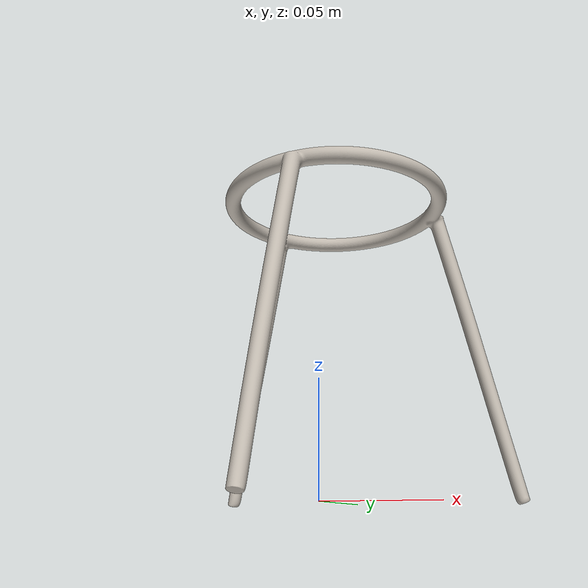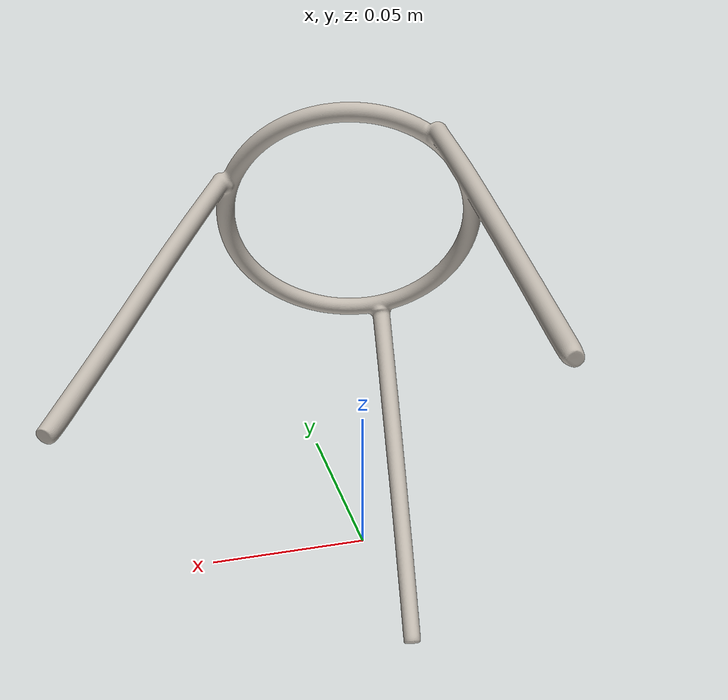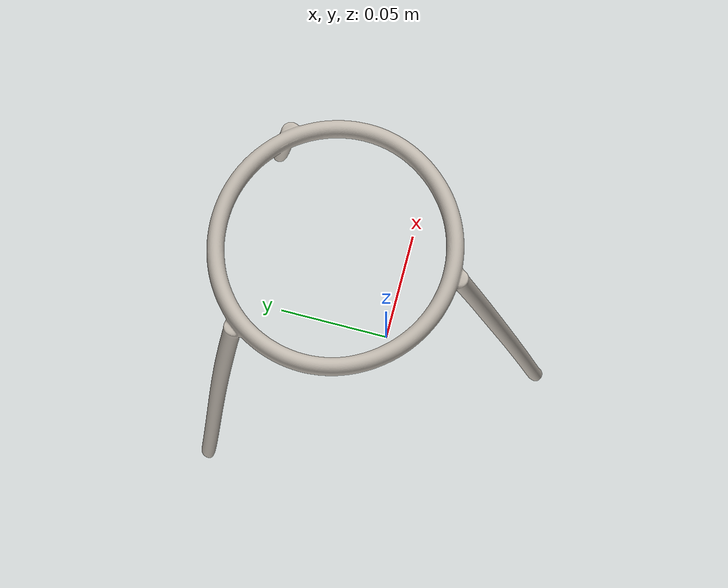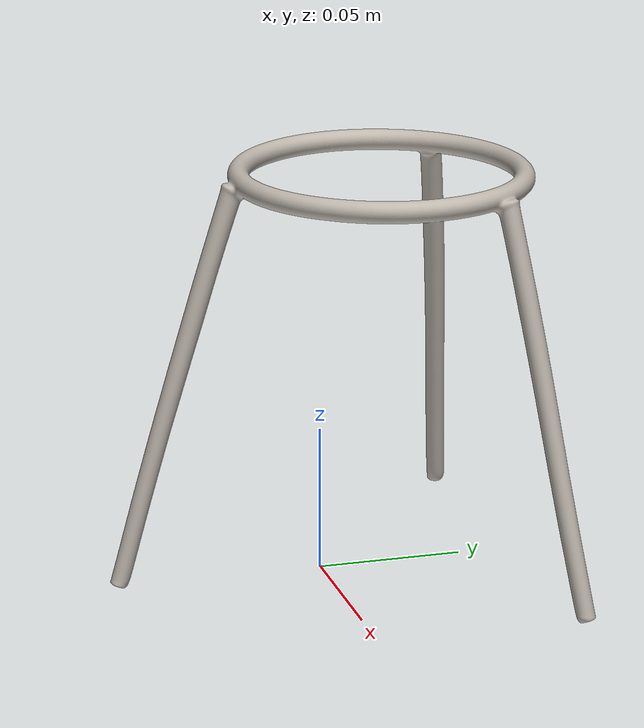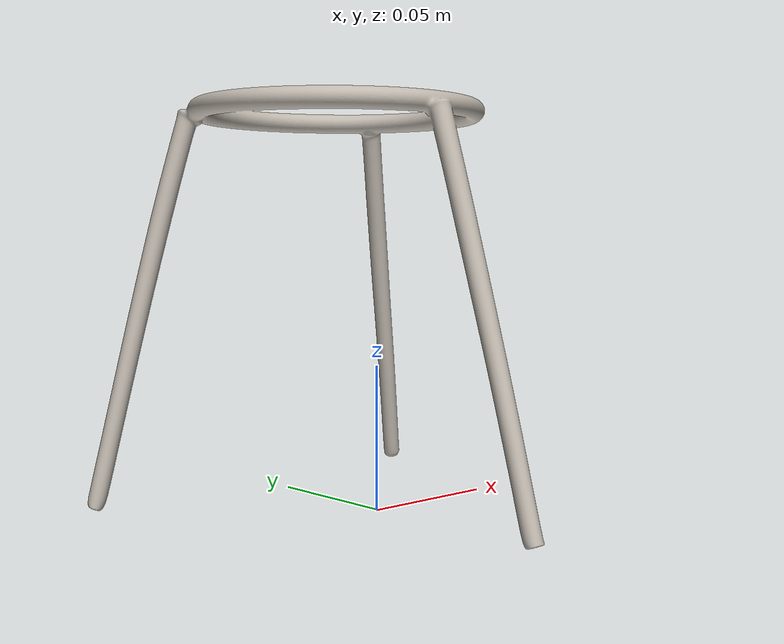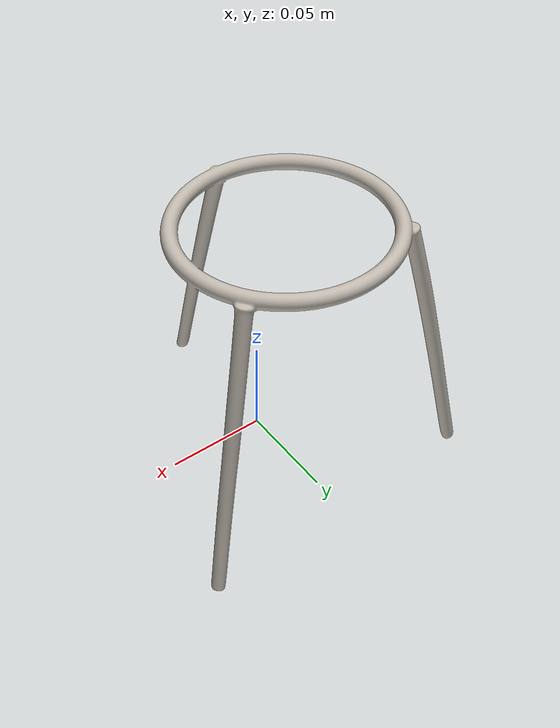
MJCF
<?xml version="1.0" ?>
<mujoco model="tripod">
  <asset>
    <texture type="2d" name="Material.001" file="Material.001.png"/>
    <material name="Material.001" texture="Material.001" specular="0.4000000000000001" shininess="0.001"/>
    <mesh file="tripod.obj" scale="0.20769179645096258 0.20769179645096258 0.20769179645096258"/>
    <mesh file="tripod/tripod_collision_0.obj" scale="0.20769179645096258 0.20769179645096258 0.20769179645096258"/>
    <mesh file="tripod/tripod_collision_1.obj" scale="0.20769179645096258 0.20769179645096258 0.20769179645096258"/>
    <mesh file="tripod/tripod_collision_2.obj" scale="0.20769179645096258 0.20769179645096258 0.20769179645096258"/>
    <mesh file="tripod/tripod_collision_3.obj" scale="0.20769179645096258 0.20769179645096258 0.20769179645096258"/>
    <mesh file="tripod/tripod_collision_4.obj" scale="0.20769179645096258 0.20769179645096258 0.20769179645096258"/>
    <mesh file="tripod/tripod_collision_5.obj" scale="0.20769179645096258 0.20769179645096258 0.20769179645096258"/>
    <mesh file="tripod/tripod_collision_6.obj" scale="0.20769179645096258 0.20769179645096258 0.20769179645096258"/>
    <mesh file="tripod/tripod_collision_7.obj" scale="0.20769179645096258 0.20769179645096258 0.20769179645096258"/>
    <mesh file="tripod/tripod_collision_8.obj" scale="0.20769179645096258 0.20769179645096258 0.20769179645096258"/>
    <mesh file="tripod/tripod_collision_9.obj" scale="0.20769179645096258 0.20769179645096258 0.20769179645096258"/>
    <mesh file="tripod/tripod_collision_10.obj" scale="0.20769179645096258 0.20769179645096258 0.20769179645096258"/>
    <mesh file="tripod/tripod_collision_11.obj" scale="0.20769179645096258 0.20769179645096258 0.20769179645096258"/>
    <mesh file="tripod/tripod_collision_12.obj" scale="0.20769179645096258 0.20769179645096258 0.20769179645096258"/>
    <mesh file="tripod/tripod_collision_13.obj" scale="0.20769179645096258 0.20769179645096258 0.20769179645096258"/>
    <mesh file="tripod/tripod_collision_14.obj" scale="0.20769179645096258 0.20769179645096258 0.20769179645096258"/>
    <mesh file="tripod/tripod_collision_15.obj" scale="0.20769179645096258 0.20769179645096258 0.20769179645096258"/>
    <mesh file="tripod/tripod_collision_16.obj" scale="0.20769179645096258 0.20769179645096258 0.20769179645096258"/>
  </asset>
  <worldbody>
    <body name="tripod">
      <inertial pos="0 0 0.070721" mass="0.02" diaginertia="0.0008 0.0008 0.0005"/>
      <geom material="Material.001" mesh="tripod" class="visual"/>
      <geom mesh="tripod_collision_0"  class="collision"/>
      <geom mesh="tripod_collision_1"  class="collision"/>
      <geom mesh="tripod_collision_2"  class="collision"/>
      <geom mesh="tripod_collision_3"  class="collision"/>
      <geom mesh="tripod_collision_4"  class="collision"/>
      <geom mesh="tripod_collision_5"  class="collision"/>
      <geom mesh="tripod_collision_6"  class="collision"/>
      <geom mesh="tripod_collision_7"  class="collision"/>
      <geom mesh="tripod_collision_8"  class="collision"/>
      <geom mesh="tripod_collision_9"  class="collision"/>
      <geom mesh="tripod_collision_10"  class="collision"/>
      <geom mesh="tripod_collision_11"  class="collision"/>
      <geom mesh="tripod_collision_12"  class="collision"/>
      <geom mesh="tripod_collision_13"  class="collision"/>
      <geom mesh="tripod_collision_14"  class="collision"/>
      <geom mesh="tripod_collision_15"  class="collision"/>
      <geom mesh="tripod_collision_16"  class="collision"/>
      <site class="grasppoint" pos="0.0000 0.0000 0.0849"/>
      <site class="grasppoint" pos="0.0000 0.0000 0.1132"/>
      <site class="grasppoint" pos="0.0000 0.0000 0.1344"/>
          <site class="keypoint" pos="-0.3611 -0.3550 0.0000"/>
      <site class="keypoint" pos="0.3611 0.3550 0.6810"/>
      <site class="placepoint" pos="-0.02500 0.0000 0.210"/>
</body>
  </worldbody>
  <compiler boundmass="0.015" boundinertia="1e-05" angle="radian"/>
  <default>
    <default class="visual">
      <geom group="2" type="mesh" contype="0" conaffinity="0" density="50"/>
          <default class="keypoint"><site type="sphere" size="0.01" group="3" rgba="1 0 0 1"/></default>
      <default class="placepoint"><site type="sphere" size="0.01" group="2" rgba="0 0 1 0"/></default>
</default>
    <default class="collision">
      <geom group="3" type="mesh" density="50" friction="1.5 0.1 0.1" solimp="0.9 0.95 0.001" solref="0.02 1"/>
    </default>
    <default class="grasppoint">
      <site type="sphere" size="0.005" group="4" rgba="0 0 1 1"/>
    </default>
  </default>
</mujoco>
